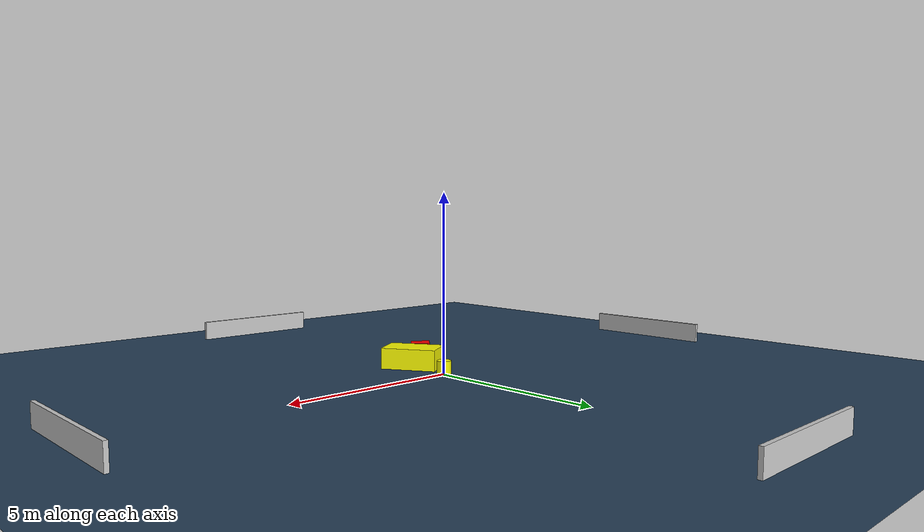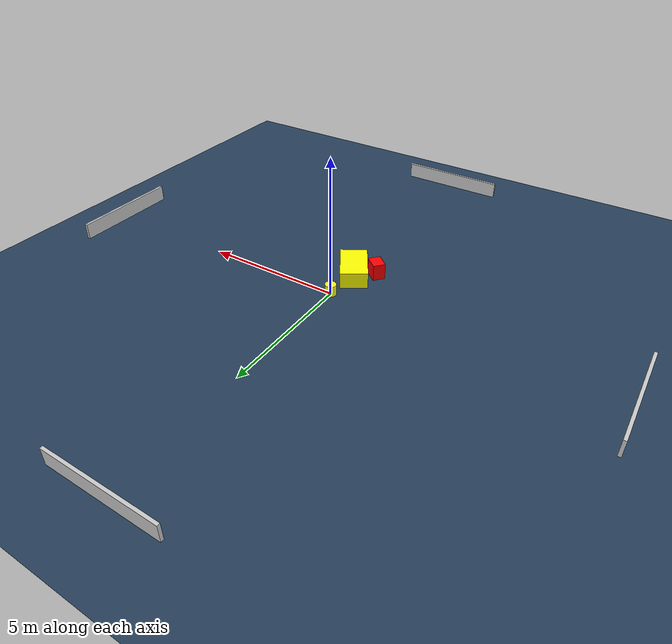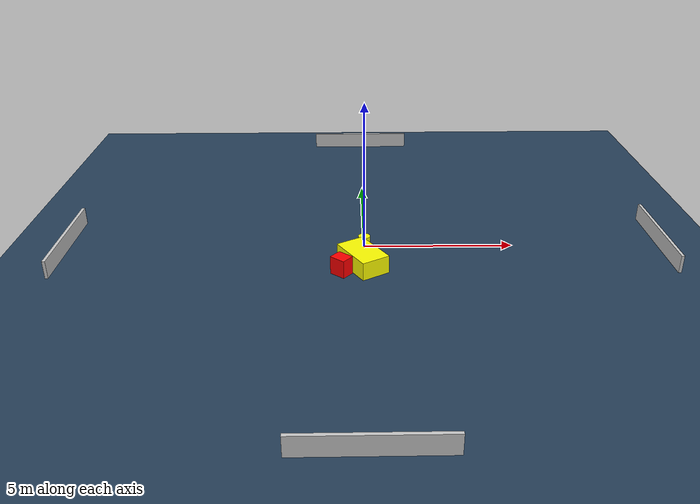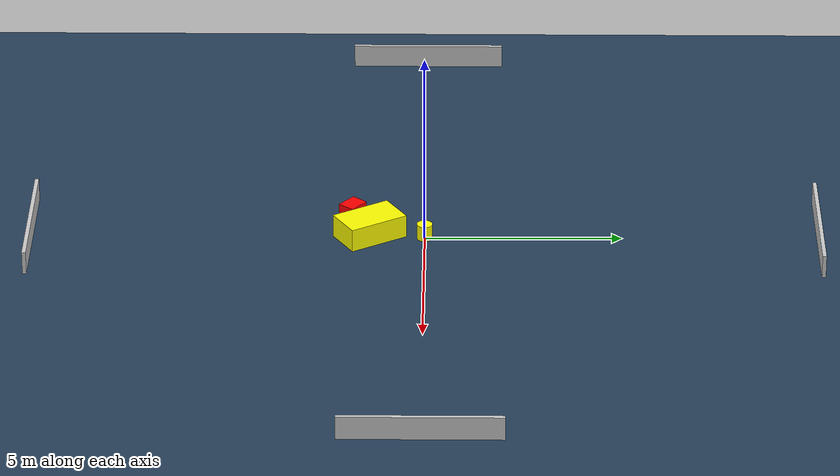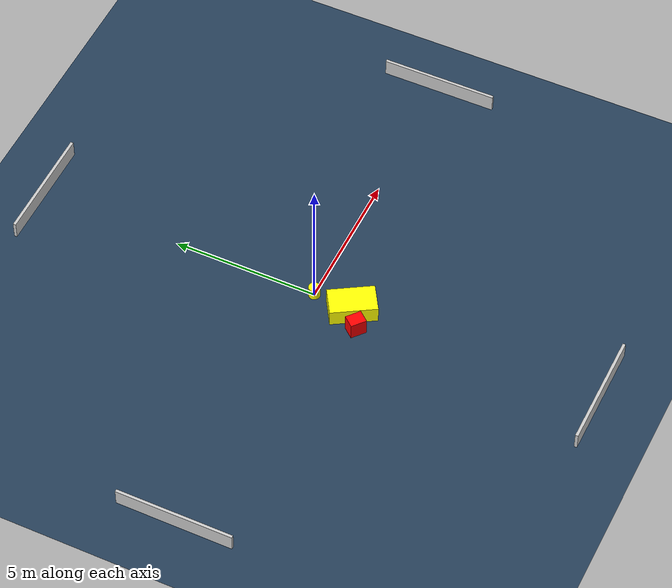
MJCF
<?xml version="1.0" ?>
<mujoco model="generated_environment">
  <option timestep="0.01" integrator="RK4" cone="elliptic"/>
  <default>
    <geom density="1"/>
  </default>
  <asset>
    <texture builtin="gradient" height="3072" name="skybox" rgb1="0.3 0.5 0.7" rgb2="0 0 0" type="skybox" width="512"/>
    <texture builtin="checker" height="300" name="groundplane" rgb1="0.2 0.3 0.4" rgb2="0.1 0.2 0.3" type="2d" width="300"/>
    <material name="groundplane" reflectance="0.2" texrepeat="5 5" texture="groundplane"/>
  </asset>
  <worldbody>
    <light dir="0 0 -1" directional="true" pos="0 0 1.5"/>
    <geom condim="3" friction="0.5 0.005 0.001" material="groundplane" name="floor" pos="0 0 0" size="0 0 0.05" type="plane"/>
    <body name="walls">
      <geom name="wall_1" condim="4" pos="-10.0 0.0 0.3" rgba="0.800000011920929 0.800000011920929 0.800000011920929 1.0" size="0.05 2.0 0.3" type="box"/>
      <geom name="wall_2" condim="4" pos="10.0 0.0 0.3" rgba="0.800000011920929 0.800000011920929 0.800000011920929 1.0" size="0.05 2.0 0.3" type="box"/>
      <geom name="wall_3" condim="4" pos="0.0 -10.0 0.3" rgba="0.800000011920929 0.800000011920929 0.800000011920929 1.0" size="2.0 0.05 0.3" type="box"/>
      <geom name="wall_4" condim="4" pos="0.0 10.0 0.3" rgba="0.800000011920929 0.800000011920929 0.800000011920929 1.0" size="2.0 0.05 0.3" type="box"/>
    </body>
    <body name="robot">
      <joint name="joint_x" type="slide" pos="0 0 0" axis="1 0 0"/>
      <joint name="joint_y" type="slide" pos="0 0 0" axis="0 1 0"/>
      <geom name="robot" type="cylinder" pos="0.0 0.0 0.2" size="0.2 0.2 0.0" mass="5.0" friction="1.0 0.005 0.0001" condim="4" rgba="1.0 1.0 0.0 1.0"/>
    </body>
    <body name="obstacle_1_movable">
      <geom name="obstacle_1_movable" condim="4" pos="-0.07465398826969011 -1.3933827706107655 0.3" euler="0 0 211.3535012322761" friction="0.0 0.005 0.001" rgba="1.0 1.0 0.0 1.0" size="0.4882961870685707 0.7934510866649673 0.3" type="box" mass="0.1"/>
      <joint type="free"/>
    </body>
    <body name="obstacle_2_static">
      <geom name="obstacle_2_static" condim="4" pos="-0.752462578317516 -1.8350600090751614 0.3" euler="0 0 229.989934798837" friction="0.0 0.005 0.001" rgba="1.0 0.0 0.0 1.0" size="0.22312452033014965 0.27574443198669263 0.3" type="box"/>
    </body>
  </worldbody>
  <actuator>
    <motor name="actuator_x" joint="joint_x" gear="1" ctrlrange="-1 1"/>
    <motor name="actuator_y" joint="joint_y" gear="1" ctrlrange="-1 1"/>
  </actuator>
</mujoco>
